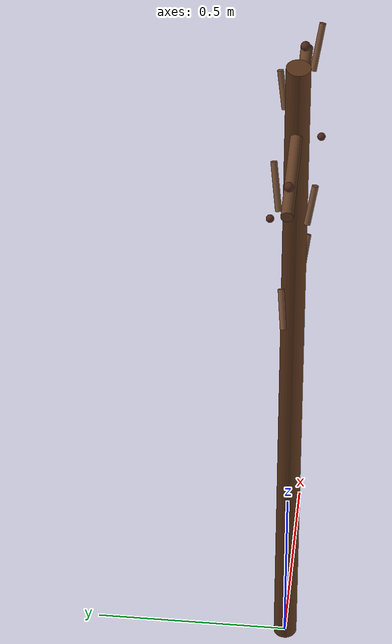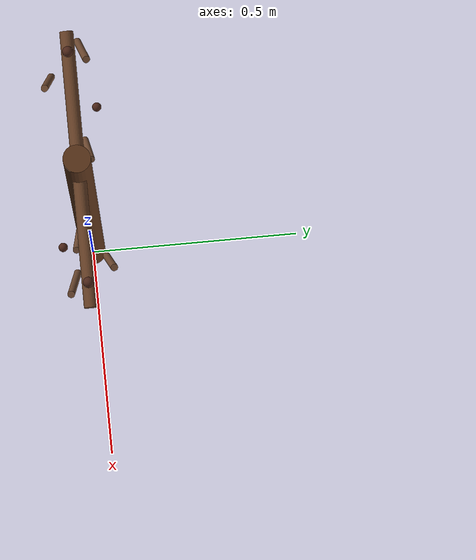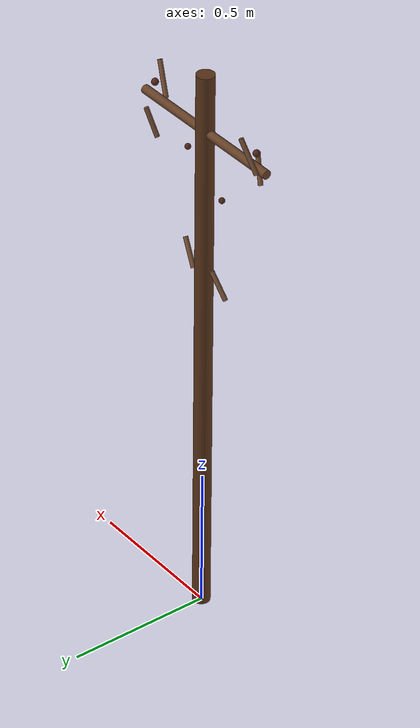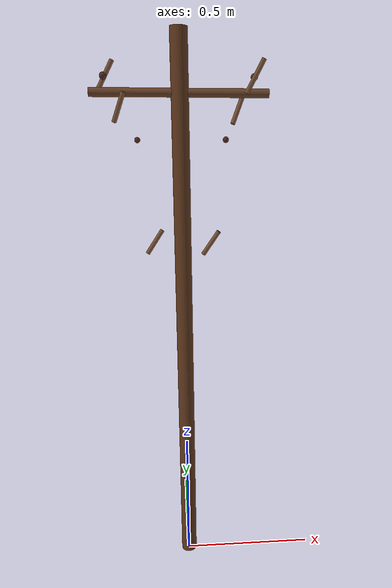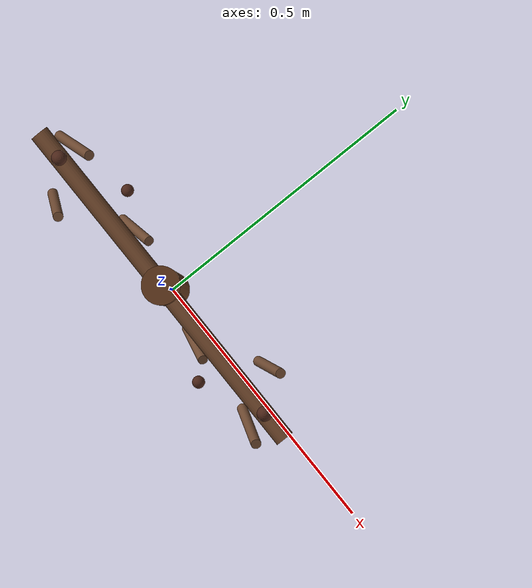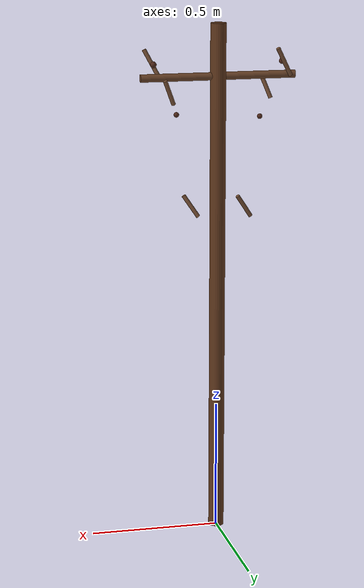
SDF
<?xml version="1.0" ?>
<sdf version="1.6">
  <model name="vine_plant_winter">
    <static>true</static>
    <link name="link">

      <!-- TRONC PRINCIPAL (hauteur 2m) -->
      <collision name="trunk">
        <pose>0 0 1.0 0 0 0</pose>
        <geometry>
          <cylinder>
            <radius>0.03</radius>
            <length>2.0</length>
          </cylinder>
        </geometry>
      </collision>
      <visual name="trunk">
        <pose>0 0 1.0 0 0 0</pose>
        <geometry>
          <cylinder>
            <radius>0.03</radius>
            <length>2.0</length>
          </cylinder>
        </geometry>
        <material>
          <ambient>0.35 0.2 0.1 1</ambient>
          <diffuse>0.35 0.2 0.1 1</diffuse>
        </material>
      </visual>

      <!-- BRANCHE GAUCHE -->
      <collision name="branch_left">
        <pose>-0.15 0 1.8 0 1.57 0</pose>
        <geometry>
          <cylinder>
            <radius>0.015</radius>
            <length>0.3</length>
          </cylinder>
        </geometry>
      </collision>
      <visual name="branch_left">
        <pose>-0.15 0 1.8 0 1.57 0</pose>
        <geometry>
          <cylinder>
            <radius>0.015</radius>
            <length>0.3</length>
          </cylinder>
        </geometry>
        <material>
          <ambient>0.4 0.25 0.15 1</ambient>
          <diffuse>0.4 0.25 0.15 1</diffuse>
        </material>
      </visual>

      <!-- BRANCHE DROITE -->
      <collision name="branch_right">
        <pose>0.15 0 1.8 0 1.57 0</pose>
        <geometry>
          <cylinder>
            <radius>0.015</radius>
            <length>0.3</length>
          </cylinder>
        </geometry>
      </collision>
      <visual name="branch_right">
        <pose>0.15 0 1.8 0 1.57 0</pose>
        <geometry>
          <cylinder>
            <radius>0.015</radius>
            <length>0.3</length>
          </cylinder>
        </geometry>
        <material>
          <ambient>0.4 0.25 0.15 1</ambient>
          <diffuse>0.4 0.25 0.15 1</diffuse>
        </material>
      </visual>

      <!-- SARMENTS SECONDAIRES GAUCHE -->
      <visual name="twig_left_1">
        <pose>-0.25 0.03 1.85 0 0.5 0.3</pose>
        <geometry>
          <cylinder>
            <radius>0.008</radius>
            <length>0.12</length>
          </cylinder>
        </geometry>
        <material>
          <ambient>0.45 0.3 0.2 1</ambient>
          <diffuse>0.45 0.3 0.2 1</diffuse>
        </material>
      </visual>

      <visual name="twig_left_2">
        <pose>-0.2 -0.05 1.75 0 0.4 -0.4</pose>
        <geometry>
          <cylinder>
            <radius>0.008</radius>
            <length>0.1</length>
          </cylinder>
        </geometry>
        <material>
          <ambient>0.45 0.3 0.2 1</ambient>
          <diffuse>0.45 0.3 0.2 1</diffuse>
        </material>
      </visual>

      <!-- SARMENTS SECONDAIRES DROITE -->
      <visual name="twig_right_1">
        <pose>0.25 -0.03 1.85 0 0.5 -0.3</pose>
        <geometry>
          <cylinder>
            <radius>0.008</radius>
            <length>0.12</length>
          </cylinder>
        </geometry>
        <material>
          <ambient>0.45 0.3 0.2 1</ambient>
          <diffuse>0.45 0.3 0.2 1</diffuse>
        </material>
      </visual>

      <visual name="twig_right_2">
        <pose>0.2 0.05 1.75 0 0.4 0.4</pose>
        <geometry>
          <cylinder>
            <radius>0.008</radius>
            <length>0.1</length>
          </cylinder>
        </geometry>
        <material>
          <ambient>0.45 0.3 0.2 1</ambient>
          <diffuse>0.45 0.3 0.2 1</diffuse>
        </material>
      </visual>

      <!-- SARMENTS MOYENS -->
      <visual name="twig_mid_left">
        <pose>-0.1 0.02 1.3 0 0.6 0.2</pose>
        <geometry>
          <cylinder>
            <radius>0.008</radius>
            <length>0.1</length>
          </cylinder>
        </geometry>
        <material>
          <ambient>0.45 0.3 0.2 1</ambient>
          <diffuse>0.45 0.3 0.2 1</diffuse>
        </material>
      </visual>

      <visual name="twig_mid_right">
        <pose>0.1 -0.02 1.3 0 0.6 -0.2</pose>
        <geometry>
          <cylinder>
            <radius>0.008</radius>
            <length>0.1</length>
          </cylinder>
        </geometry>
        <material>
          <ambient>0.45 0.3 0.2 1</ambient>
          <diffuse>0.45 0.3 0.2 1</diffuse>
        </material>
      </visual>

      <!-- BOURGEONS -->
      <visual name="bud_1">
        <pose>-0.25 0 1.85 0 0 0</pose>
        <geometry>
          <sphere>
            <radius>0.012</radius>
          </sphere>
        </geometry>
        <material>
          <ambient>0.3 0.15 0.1 1</ambient>
          <diffuse>0.3 0.15 0.1 1</diffuse>
        </material>
      </visual>

      <visual name="bud_2">
        <pose>0.25 0 1.85 0 0 0</pose>
        <geometry>
          <sphere>
            <radius>0.012</radius>
          </sphere>
        </geometry>
        <material>
          <ambient>0.3 0.15 0.1 1</ambient>
          <diffuse>0.3 0.15 0.1 1</diffuse>
        </material>
      </visual>

      <visual name="bud_3">
        <pose>-0.15 0.05 1.65 0 0 0</pose>
        <geometry>
          <sphere>
            <radius>0.01</radius>
          </sphere>
        </geometry>
        <material>
          <ambient>0.3 0.15 0.1 1</ambient>
          <diffuse>0.3 0.15 0.1 1</diffuse>
        </material>
      </visual>

      <visual name="bud_4">
        <pose>0.15 -0.05 1.65 0 0 0</pose>
        <geometry>
          <sphere>
            <radius>0.01</radius>
          </sphere>
        </geometry>
        <material>
          <ambient>0.3 0.15 0.1 1</ambient>
          <diffuse>0.3 0.15 0.1 1</diffuse>
        </material>
      </visual>

    </link>
  </model>
</sdf>
